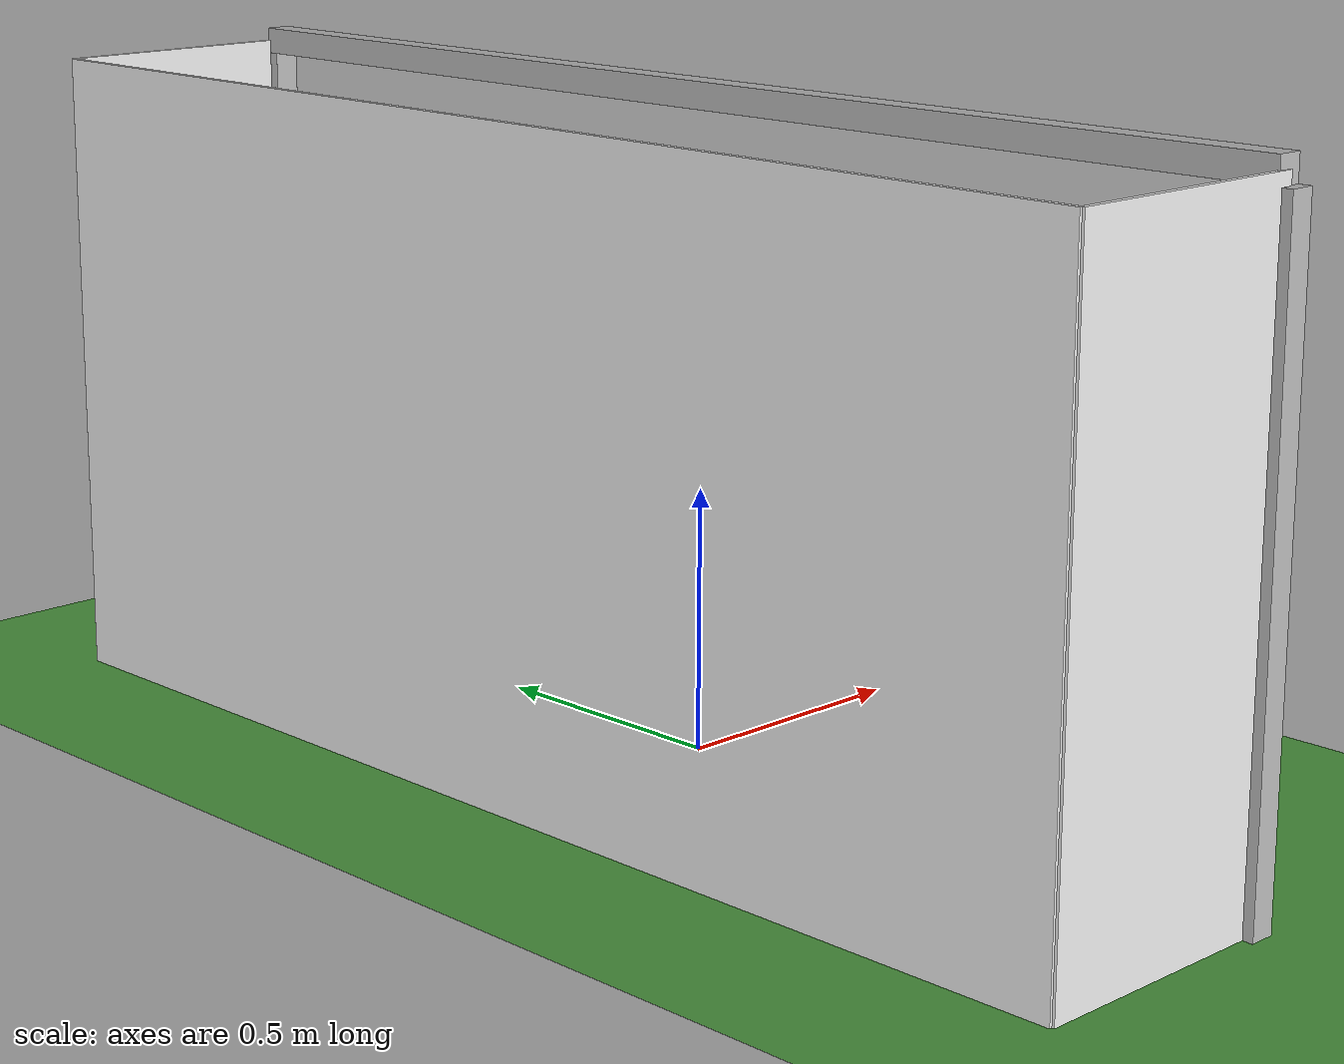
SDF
<?xml version="1.0" ?>
<sdf version="1.7">
  <world name="penalty_field">
    <plugin
      filename="libgazebo_ros_state.so"
      name="gazebo_ros_state">
      <ros>
        <namespace>/gazebo</namespace>
      </ros>
      <update_rate>1.0</update_rate>
    </plugin>

    <light type="directional" name="sun">
      <cast_shadows>true</cast_shadows>
      <pose>0 0 10 0 0 0</pose>
      <diffuse>0.8 0.8 0.8 1</diffuse>
      <specular>0.2 0.2 0.2 1</specular>
      <direction>-0.5 0.1 -0.9</direction>
    </light>

    <model name="ground_plane">
      <static>true</static>
      <link name="link">
        <collision name="collision">
          <geometry>
            <plane>
              <normal>0 0 1</normal>
              <size>100 100</size>
            </plane>
          </geometry>
          <surface>
            <friction>
              <ode>
                <mu>100</mu>
                <mu2>50</mu2>
              </ode>
            </friction>
          </surface>
        </collision>
        <visual name="visual">
          <cast_shadows>false</cast_shadows>
          <geometry>
            <plane>
              <normal>0 0 1</normal>
              <size>100 100</size>
            </plane>
          </geometry>
          <material>
            <script>
              <uri>file://media/materials/scripts/gazebo.material</uri>
              <name>Gazebo/Grass</name>
            </script>
          </material>
        </visual>
      </link>
    </model>

    <model name='soccer_goal'>
      <static>true</static>
      <pose>0 0 0 0 0 0</pose>
      <link name='post_left'>
        <pose>0 1.225 0.6 0 0 0</pose>
        <visual name='visual'>
          <geometry><box><size>0.05 0.05 1.2</size></box></geometry>
        </visual>
        <collision name='collision'>
          <geometry><box><size>0.05 0.05 1.2</size></box></geometry>
        </collision>
      </link>
      <link name='post_right'>
        <pose>0 -1.225 0.6 0 0 0</pose>
        <visual name='visual'>
          <geometry><box><size>0.05 0.05 1.2</size></box></geometry>
        </visual>
        <collision name='collision'>
          <geometry><box><size>0.05 0.05 1.2</size></box></geometry>
        </collision>
      </link>
      <link name='crossbar'>
        <pose>0 0 1.225 0 0 0</pose>
        <visual name='visual'>
          <geometry><box><size>0.05 2.45 0.05</size></box></geometry>
        </visual>
        <collision name='collision'>
          <geometry><box><size>0.05 2.45 0.05</size></box></geometry>
        </collision>
      </link>
      <link name='net_back'>
        <pose>-0.5 0 0.6125 0 0 0</pose>
        <visual name='visual'>
          <geometry><box><size>0.01 2.45 1.225</size></box></geometry>
          <material><script><name>Gazebo/White</name></script><transparent>true</transparent></material>
        </visual>
        <collision name='collision'>
          <geometry><box><size>0.01 2.45 1.225</size></box></geometry>
          <surface>
            <bounce><restitution_coefficient>0.1</restitution_coefficient></bounce>
            <contact><ode><kd>1000</kd></ode></contact>
          </surface>
        </collision>
      </link>
      <link name='net_left_side'>
        <pose>-0.25 1.225 0.6125 0 0 0</pose>
        <visual name='visual'>
          <geometry><box><size>0.5 0.01 1.225</size></box></geometry>
          <material><script><name>Gazebo/White</name></script><transparent>true</transparent></material>
        </visual>
        <collision name='collision'>
          <geometry><box><size>0.5 0.01 1.225</size></box></geometry>
          <surface>
            <bounce><restitution_coefficient>0.1</restitution_coefficient></bounce>
            <contact><ode><kd>1000</kd></ode></contact>
          </surface>
        </collision>
      </link>
      <link name='net_right_side'>
        <pose>-0.25 -1.225 0.6125 0 0 0</pose>
        <visual name='visual'>
          <geometry><box><size>0.5 0.01 1.225</size></box></geometry>
          <material><script><name>Gazebo/White</name></script><transparent>true</transparent></material>
        </visual>
        <collision name='collision'>
          <geometry><box><size>0.5 0.01 1.225</size></box></geometry>
          <surface>
            <bounce><restitution_coefficient>0.1</restitution_coefficient></bounce>
            <contact><ode><kd>1000</kd></ode></contact>
          </surface>
        </collision>
      </link>
    </model>

    <model name="obstacle_1">
      <static>true</static>
      <pose>0.0 0.9 0.25 0 0 0</pose>
      <link name="link">
        <visual name="visual">
          <geometry><cylinder><radius>0.1</radius><length>0.5</length></cylinder></geometry>
          <material>
            <ambient>1.0 1.0 0.0 1.0</ambient>
            <diffuse>1.0 1.0 0.0 1.0</diffuse>
            <specular>0.1 0.1 0.1 1.0</specular>
          </material>
        </visual>
        <collision name="collision">
          <geometry><cylinder><radius>0.1</radius><length>0.5</length></cylinder></geometry>
        </collision>
      </link>
    </model>

    <model name="obstacle_2">
      <static>true</static>
      <pose>0.0 0.3 0.25 0 0 0</pose>
      <link name="link">
        <visual name="visual">
          <geometry><cylinder><radius>0.1</radius><length>0.5</length></cylinder></geometry>
          <material>
            <ambient>1.0 1.0 0.0 1.0</ambient>
            <diffuse>1.0 1.0 0.0 1.0</diffuse>
            <specular>0.1 0.1 0.1 1.0</specular>
          </material>
        </visual>
        <collision name="collision">
          <geometry><cylinder><radius>0.1</radius><length>0.5</length></cylinder></geometry>
        </collision>
      </link>
    </model>

    <model name="obstacle_3">
      <static>true</static>
      <pose>0.0 -0.3 0.25 0 0 0</pose>
      <link name="link">
        <visual name="visual">
          <geometry><cylinder><radius>0.1</radius><length>0.5</length></cylinder></geometry>
          <material>
            <ambient>1.0 1.0 0.0 1.0</ambient>
            <diffuse>1.0 1.0 0.0 1.0</diffuse>
            <specular>0.1 0.1 0.1 1.0</specular>
          </material>
        </visual>
        <collision name="collision">
          <geometry><cylinder><radius>0.1</radius><length>0.5</length></cylinder></geometry>
        </collision>
      </link>
    </model>

    <model name="obstacle_4">
      <static>true</static>
      <pose>0.0 -0.9 0.25 0 0 0</pose>
      <link name="link">
        <visual name="visual">
          <geometry><cylinder><radius>0.1</radius><length>0.5</length></cylinder></geometry>
          <material>
            <ambient>1.0 1.0 0.0 1.0</ambient>
            <diffuse>1.0 1.0 0.0 1.0</diffuse>
            <specular>0.1 0.1 0.1 1.0</specular>
          </material>
        </visual>
        <collision name="collision">
          <geometry><cylinder><radius>0.1</radius><length>0.5</length></cylinder></geometry>
        </collision>
      </link>
    </model>

  </world>
</sdf>
